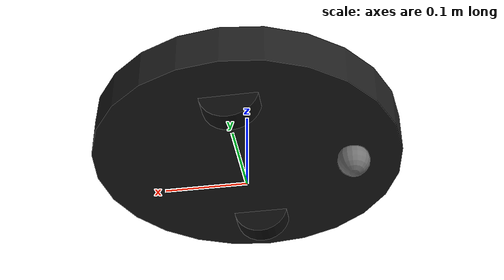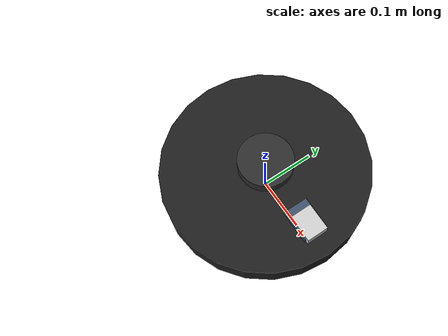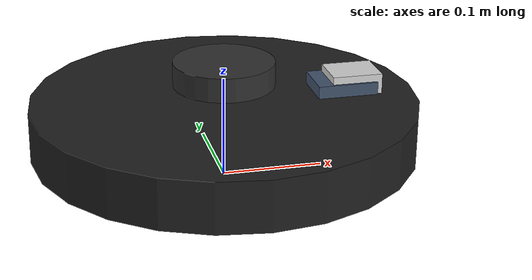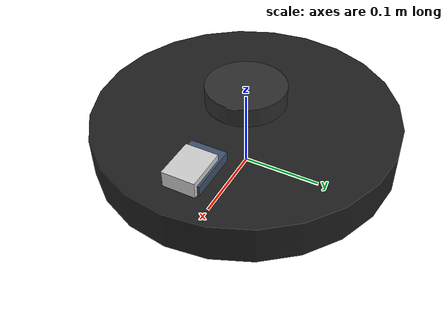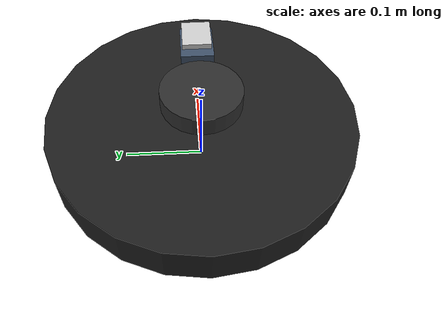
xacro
<?xml version="1.0"?>
<robot name="robot_vacuum" xmlns:xacro="http://www.ros.org/wiki/xacro">
  <xacro:property name="pi" value="3.1415926535897931" />

  <link name="base_link">
    <inertial>
      <origin xyz="0 0 0.055" rpy="0 0 0" />
      <mass value="6.0" />
      <inertia ixx="0.043" iyy="0.043" izz="0.078" ixy="0" iyz="0" ixz="0" />
    </inertial>
    <visual>
      <origin xyz="0 0 0.055" rpy="0 0 0" />
      <geometry>
        <cylinder radius="0.19" length="0.05" />
      </geometry>
      <material name="vacuum_body">
        <color rgba="0.12 0.12 0.12 1.0" />
      </material>
    </visual>
    <collision>
      <origin xyz="0 0 0.055" rpy="0 0 0" />
      <geometry>
        <cylinder radius="0.19" length="0.05" />
      </geometry>
    </collision>
  </link>

  <link name="left_wheel_link">
    <inertial>
      <origin xyz="0 0 0" rpy="0 0 0" />
      <mass value="0.12" />
      <inertia ixx="0.00004" iyy="0.00004" izz="0.00004" ixy="0" iyz="0" ixz="0" />
    </inertial>
    <visual>
      <origin xyz="0 0 0" rpy="1.57079632679 0 0" />
      <geometry>
        <cylinder radius="0.035" length="0.025" />
      </geometry>
      <material name="wheel_dark">
        <color rgba="0.05 0.05 0.05 1.0" />
      </material>
    </visual>
    <collision>
      <origin xyz="0 0 0" rpy="1.57079632679 0 0" />
      <geometry>
        <cylinder radius="0.035" length="0.025" />
      </geometry>
    </collision>
  </link>

  <link name="right_wheel_link">
    <inertial>
      <origin xyz="0 0 0" rpy="0 0 0" />
      <mass value="0.12" />
      <inertia ixx="0.00004" iyy="0.00004" izz="0.00004" ixy="0" iyz="0" ixz="0" />
    </inertial>
    <visual>
      <origin xyz="0 0 0" rpy="1.57079632679 0 0" />
      <geometry>
        <cylinder radius="0.035" length="0.025" />
      </geometry>
      <material name="wheel_dark">
        <color rgba="0.05 0.05 0.05 1.0" />
      </material>
    </visual>
    <collision>
      <origin xyz="0 0 0" rpy="1.57079632679 0 0" />
      <geometry>
        <cylinder radius="0.035" length="0.025" />
      </geometry>
    </collision>
  </link>

  <link name="caster_link">
    <inertial>
      <origin xyz="0 0 0" rpy="0 0 0" />
      <mass value="0.05" />
      <inertia ixx="0.00001" iyy="0.00001" izz="0.00001" ixy="0" iyz="0" ixz="0" />
    </inertial>
    <visual>
      <origin xyz="0 0 0" rpy="0 0 0" />
      <geometry>
        <sphere radius="0.02" />
      </geometry>
      <material name="caster_gray">
        <color rgba="0.45 0.45 0.45 1.0" />
      </material>
    </visual>
    <collision>
      <origin xyz="0 0 0" rpy="0 0 0" />
      <geometry>
        <sphere radius="0.02" />
      </geometry>
    </collision>
  </link>

  <link name="lidar_link">
    <inertial>
      <origin xyz="0 0 0" rpy="0 0 0" />
      <mass value="0.2" />
      <inertia ixx="0.0001" iyy="0.0001" izz="0.0001" ixy="0" iyz="0" ixz="0" />
    </inertial>
    <visual>
      <origin xyz="0 0 0.012" rpy="0 0 0" />
      <geometry>
        <cylinder radius="0.05" length="0.024" />
      </geometry>
      <material name="lidar_black">
        <color rgba="0.18 0.18 0.18 1.0" />
      </material>
    </visual>
    <collision>
      <origin xyz="0 0 0.012" rpy="0 0 0" />
      <geometry>
        <cylinder radius="0.05" length="0.024" />
      </geometry>
    </collision>
  </link>

  <link name="camera_link">
    <inertial>
      <origin xyz="0 0 0" rpy="0 0 0" />
      <mass value="0.1" />
      <inertia ixx="0.00002" iyy="0.00002" izz="0.00002" ixy="0" iyz="0" ixz="0" />
    </inertial>
    <visual>
      <origin xyz="0 0 0" rpy="0 0 0" />
      <geometry>
        <box size="0.05 0.04 0.03" />
      </geometry>
      <material name="camera_white">
        <color rgba="0.82 0.82 0.82 1.0" />
      </material>
    </visual>
    <collision>
      <origin xyz="0 0 0" rpy="0 0 0" />
      <geometry>
        <box size="0.05 0.04 0.03" />
      </geometry>
    </collision>
  </link>

  <link name="rgbd_link">
    <inertial>
      <origin xyz="0 0 0" rpy="0 0 0" />
      <mass value="0.12" />
      <inertia ixx="0.00003" iyy="0.00003" izz="0.00003" ixy="0" iyz="0" ixz="0" />
    </inertial>
    <visual>
      <origin xyz="0 0 0" rpy="0 0 0" />
      <geometry>
        <box size="0.06 0.045 0.035" />
      </geometry>
      <material name="camera_blue">
        <color rgba="0.25 0.32 0.42 1.0" />
      </material>
    </visual>
    <collision>
      <origin xyz="0 0 0" rpy="0 0 0" />
      <geometry>
        <box size="0.06 0.045 0.035" />
      </geometry>
    </collision>
  </link>

  <joint name="left_wheel_joint" type="continuous">
    <parent link="base_link" />
    <child link="left_wheel_link" />
    <origin xyz="0 0.12 0.035" rpy="0 0 0" />
    <axis xyz="0 1 0" />
  </joint>

  <joint name="right_wheel_joint" type="continuous">
    <parent link="base_link" />
    <child link="right_wheel_link" />
    <origin xyz="0 -0.12 0.035" rpy="0 0 0" />
    <axis xyz="0 1 0" />
  </joint>

  <joint name="caster_joint" type="fixed">
    <parent link="base_link" />
    <child link="caster_link" />
    <origin xyz="-0.13 0 0.02" rpy="0 0 0" />
  </joint>

  <joint name="lidar_joint" type="fixed">
    <parent link="base_link" />
    <child link="lidar_link" />
    <origin xyz="0.0 0.0 0.095" rpy="0 0 0" />
  </joint>

  <joint name="camera_joint" type="fixed">
    <parent link="base_link" />
    <child link="camera_link" />
    <origin xyz="0.13 0.0 0.085" rpy="0 0 0" />
  </joint>

  <joint name="rgbd_joint" type="fixed">
    <parent link="base_link" />
    <child link="rgbd_link" />
    <origin xyz="0.12 0.0 0.075" rpy="0 0 0" />
  </joint>

  <gazebo reference="base_link">
    <material>Gazebo/Black</material>
    <mu1>0.8</mu1>
    <mu2>0.8</mu2>
    <selfCollide>true</selfCollide>
    <gravity>true</gravity>
  </gazebo>

  <gazebo reference="left_wheel_link">
    <material>Gazebo/DarkGrey</material>
    <mu1>1000</mu1>
    <mu2>1000</mu2>
    <selfCollide>true</selfCollide>
  </gazebo>

  <gazebo reference="right_wheel_link">
    <material>Gazebo/DarkGrey</material>
    <mu1>1000</mu1>
    <mu2>1000</mu2>
    <selfCollide>true</selfCollide>
  </gazebo>

  <gazebo reference="lidar_link">
    <material>Gazebo/Black</material>
    <selfCollide>true</selfCollide>
  </gazebo>

  <gazebo reference="camera_link">
    <material>Gazebo/White</material>
    <selfCollide>true</selfCollide>
  </gazebo>

  <gazebo reference="rgbd_link">
    <material>Gazebo/Blue</material>
    <selfCollide>true</selfCollide>
  </gazebo>

  <gazebo>
    <plugin name="diff_drive" filename="libgazebo_ros_diff_drive.so">
      <updateRate>100.0</updateRate>
      <leftJoint>left_wheel_joint</leftJoint>
      <rightJoint>right_wheel_joint</rightJoint>
      <wheelSeparation>0.24</wheelSeparation>
      <wheelDiameter>0.07</wheelDiameter>
      <wheelAcceleration>1.0</wheelAcceleration>
      <wheelTorque>30.0</wheelTorque>
      <commandTopic>cmd_vel</commandTopic>
      <odometryTopic>odom</odometryTopic>
      <odometryFrame>odom</odometryFrame>
      <robotBaseFrame>base_link</robotBaseFrame>
      <publishWheelTF>false</publishWheelTF>
      <publishOdomTF>true</publishOdomTF>
      <publishTf>true</publishTf>
      <publishOdom>true</publishOdom>
      <publishWheelJointState>true</publishWheelJointState>
      <legacyMode>false</legacyMode>
    </plugin>
  </gazebo>

  <gazebo reference="lidar_link">
    <sensor type="ray" name="lidar_sensor">
      <pose>0 0 0 0 0 0</pose>
      <visualize>true</visualize>
      <update_rate>40</update_rate>
      <ray>
        <scan>
          <horizontal>
            <samples>720</samples>
            <resolution>1</resolution>
            <min_angle>-1.57079632679</min_angle>
            <max_angle>1.57079632679</max_angle>
          </horizontal>
        </scan>
        <range>
          <min>0.05</min>
          <max>20.0</max>
          <resolution>0.01</resolution>
        </range>
        <noise>
          <type>gaussian</type>
          <mean>0.0</mean>
          <stddev>0.01</stddev>
        </noise>
      </ray>
      <plugin name="lidar_plugin" filename="libgazebo_ros_laser.so">
        <topicName>/scan</topicName>
        <frameName>lidar_link</frameName>
      </plugin>
    </sensor>
  </gazebo>

  <gazebo reference="rgbd_link">
    <sensor type="depth" name="rgbd_sensor">
      <always_on>true</always_on>
      <visualize>true</visualize>
      <update_rate>30.0</update_rate>
      <camera>
        <horizontal_fov>1.0471975512</horizontal_fov>
        <image>
          <width>640</width>
          <height>480</height>
          <format>R8G8B8</format>
        </image>
        <clip>
          <near>0.05</near>
          <far>10.0</far>
        </clip>
      </camera>
      <plugin name="rgbd_plugin" filename="libgazebo_ros_openni_kinect.so">
        <alwaysOn>true</alwaysOn>
        <updateRate>30.0</updateRate>
        <cameraName>camera</cameraName>
        <imageTopicName>/camera/rgb/image_raw</imageTopicName>
        <cameraInfoTopicName>/camera/rgb/camera_info</cameraInfoTopicName>
        <depthImageTopicName>/camera/depth/image_raw</depthImageTopicName>
        <depthImageCameraInfoTopicName>/camera/depth/camera_info</depthImageCameraInfoTopicName>
        <pointCloudTopicName>/camera/depth/points</pointCloudTopicName>
        <frameName>rgbd_link</frameName>
        <hackBaseline>0.07</hackBaseline>
      </plugin>
    </sensor>
  </gazebo>
</robot>
